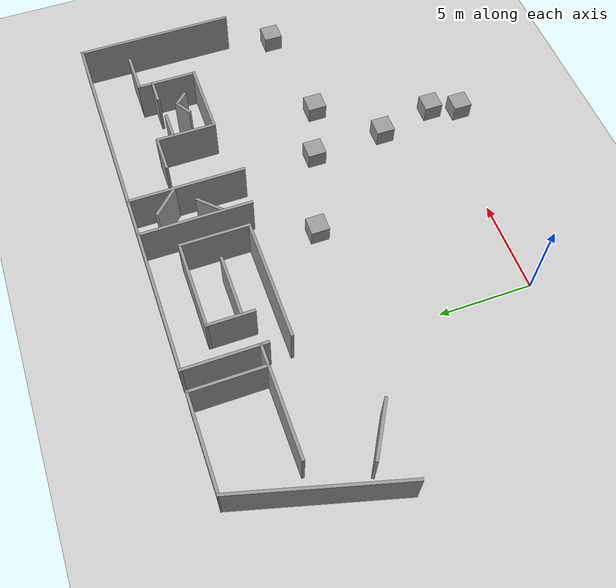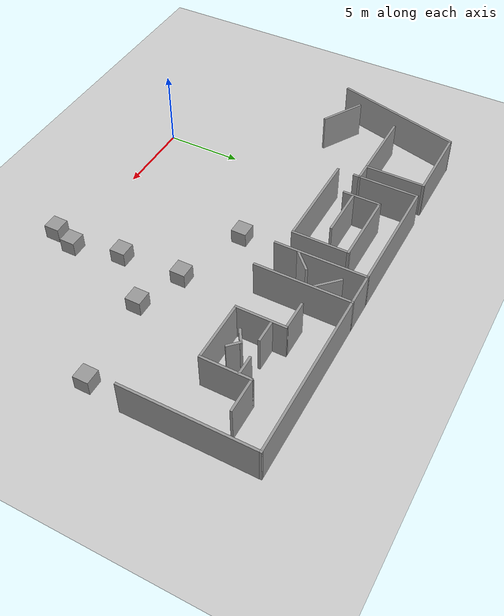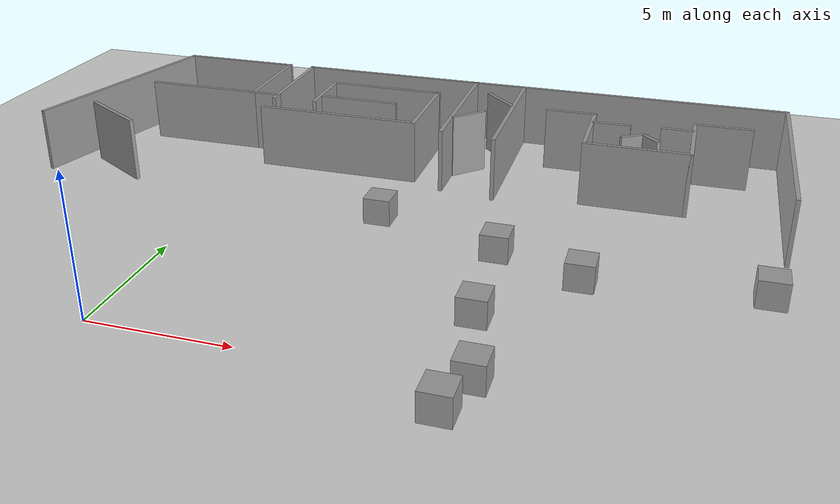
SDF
<sdf version="1.6">
 <world name="default">
  <model name="ground_plane">
   <static>1</static>
   <link name="link">
    <collision name="collision">
     <geometry><plane><normal>0 0 1</normal><size>100 100</size></plane></geometry>
     <surface>
      <contact><collide_bitmask>65535</collide_bitmask></contact>
      <friction><ode><mu>100</mu><mu2>50</mu2></ode></friction>
     </surface>
    </collision>
    <visual name="visual">
     <cast_shadows>0</cast_shadows>
     <geometry><plane><normal>0 0 1</normal><size>100 100</size></plane></geometry>
     <material>
      <script><uri>file://media/materials/scripts/gazebo.material</uri><name>Gazebo/Grey</name></script>
     </material>
    </visual>
   </link>
  </model>
  <model name="unit_box">
   <pose>14.1575 6.46999 0.499995 0 -1e-05 0</pose>
   <link name="link">
    <inertial>
     <mass>1</mass>
     <inertia>
      <ixx>0.166667</ixx>
      <ixy>0</ixy>
      <ixz>0</ixz>
      <iyy>0.166667</iyy>
      <iyz>0</iyz>
      <izz>0.166667</izz>
     </inertia>
    </inertial>
    <collision name="collision"><geometry><box><size>1 1 1</size></box></geometry></collision>
    <visual name="visual">
     <geometry><box><size>1 1 1</size></box></geometry>
     <material>
      <script><name>Gazebo/Grey</name><uri>file://media/materials/scripts/gazebo.material</uri></script>
     </material>
    </visual>
   </link>
  </model>
  <model name="unit_box_0">
   <pose>20.0263 7.10302 0.499995 -1e-05 -0 -0</pose>
   <link name="link">
    <inertial>
     <mass>1</mass>
     <inertia>
      <ixx>0.166667</ixx>
      <ixy>0</ixy>
      <ixz>0</ixz>
      <iyy>0.166667</iyy>
      <iyz>0</iyz>
      <izz>0.166667</izz>
     </inertia>
    </inertial>
    <collision name="collision"><geometry><box><size>1 1 1</size></box></geometry></collision>
    <visual name="visual">
     <geometry><box><size>1 1 1</size></box></geometry>
     <material>
      <script><name>Gazebo/Grey</name><uri>file://media/materials/scripts/gazebo.material</uri></script>
     </material>
    </visual>
   </link>
  </model>
  <model name="unit_box_5">
   <pose>12.0703 0.301774 0.499995 0 -1e-05 0</pose>
   <link name="link">
    <inertial>
     <mass>1</mass>
     <inertia>
      <ixx>0.166667</ixx>
      <ixy>0</ixy>
      <ixz>0</ixz>
      <iyy>0.166667</iyy>
      <iyz>0</iyz>
      <izz>0.166667</izz>
     </inertia>
    </inertial>
    <collision name="collision"><geometry><box><size>1 1 1</size></box></geometry></collision>
    <visual name="visual">
     <geometry><box><size>1 1 1</size></box></geometry>
     <material>
      <script><name>Gazebo/Grey</name><uri>file://media/materials/scripts/gazebo.material</uri></script>
     </material>
    </visual>
   </link>
  </model>
  <model name="unit_box_4">
   <pose>11.5612 -1.25822 0.499995 0 1e-05 0</pose>
   <link name="link">
    <inertial>
     <mass>1</mass>
     <inertia>
      <ixx>0.166667</ixx>
      <ixy>0</ixy>
      <ixz>0</ixz>
      <iyy>0.166667</iyy>
      <iyz>0</iyz>
      <izz>0.166667</izz>
     </inertia>
    </inertial>
    <collision name="collision"><geometry><box><size>1 1 1</size></box></geometry></collision>
    <visual name="visual">
     <geometry><box><size>1 1 1</size></box></geometry>
     <material>
      <script><name>Gazebo/Grey</name><uri>file://media/materials/scripts/gazebo.material</uri></script>
     </material>
    </visual>
   </link>
  </model>
  <model name="custom_large_house_2">
   <pose>6.36244 13.8515 0 0 -0 0</pose>
   <link name="Wall_10">
    <collision name="Wall_10_Collision">
     <geometry><box><size>2.5 0.15 2.5</size></box></geometry>
     <pose>0 0 1.25 0 -0 0</pose>
    </collision>
    <visual name="Wall_10_Visual">
     <pose>0 0 1.25 0 -0 0</pose>
     <geometry><box><size>2.5 0.15 2.5</size></box></geometry>
     <material>
      <script><uri>file://media/materials/scripts/gazebo.material</uri><name>Gazebo/Grey</name></script>
      <ambient>1 1 1 1</ambient>
     </material>
     <meta><layer>0</layer></meta>
    </visual>
    <pose>-4.30365 1.24157 0 0 -0 -1.5708</pose>
   </link>
   <link name="Wall_12">
    <collision name="Wall_12_Collision">
     <geometry><box><size>4 0.15 2.5</size></box></geometry>
     <pose>0 0 1.25 0 -0 0</pose>
    </collision>
    <visual name="Wall_12_Visual">
     <pose>0 0 1.25 0 -0 0</pose>
     <geometry><box><size>4 0.15 2.5</size></box></geometry>
     <material>
      <script><uri>file://media/materials/scripts/gazebo.material</uri><name>Gazebo/Grey</name></script>
      <ambient>1 1 1 1</ambient>
     </material>
     <meta><layer>0</layer></meta>
    </visual>
    <pose>-6.05365 2.24157 0 0 -0 -1.5708</pose>
   </link>
   <link name="Wall_13">
    <collision name="Wall_13_Collision">
     <geometry><box><size>1.25 0.15 2.5</size></box></geometry>
     <pose>0 0 1.25 0 -0 0</pose>
    </collision>
    <visual name="Wall_13_Visual">
     <pose>0 0 1.25 0 -0 0</pose>
     <geometry><box><size>1.25 0.15 2.5</size></box></geometry>
     <material>
      <script><uri>file://media/materials/scripts/gazebo.material</uri><name>Gazebo/Grey</name></script>
      <ambient>1 1 1 1</ambient>
     </material>
     <meta><layer>0</layer></meta>
    </visual>
    <pose>-6.60365 0.316572 0 0 -0 3.14159</pose>
   </link>
   <link name="Wall_14">
    <collision name="Wall_14_Collision">
     <geometry><box><size>4 0.15 2.5</size></box></geometry>
     <pose>0 0 1.25 0 -0 0</pose>
    </collision>
    <visual name="Wall_14_Visual">
     <pose>0 0 1.25 0 -0 0</pose>
     <geometry><box><size>4 0.15 2.5</size></box></geometry>
     <material>
      <script><uri>file://media/materials/scripts/gazebo.material</uri><name>Gazebo/Grey</name></script>
      <ambient>1 1 1 1</ambient>
     </material>
     <meta><layer>0</layer></meta>
    </visual>
    <pose>-7.15365 2.24157 0 0 -0 1.5708</pose>
   </link>
   <link name="Wall_15">
    <collision name="Wall_15_Collision">
     <geometry><box><size>5 0.15 2.5</size></box></geometry>
     <pose>0 0 1.25 0 -0 0</pose>
    </collision>
    <visual name="Wall_15_Visual">
     <pose>0 0 1.25 0 -0 0</pose>
     <geometry><box><size>5 0.15 2.5</size></box></geometry>
     <material>
      <script><uri>file://media/materials/scripts/gazebo.material</uri><name>Gazebo/Grey</name></script>
      <ambient>1 1 1 1</ambient>
     </material>
     <meta><layer>0</layer></meta>
    </visual>
    <pose>-9.57865 4.16657 0 0 -0 3.14159</pose>
   </link>
   <link name="Wall_16">
    <collision name="Wall_16_Collision">
     <geometry><box><size>8.75 0.15 2.5</size></box></geometry>
     <pose>0 0 1.25 0 -0 0</pose>
    </collision>
    <visual name="Wall_16_Visual">
     <pose>0 0 1.25 0 -0 0</pose>
     <geometry><box><size>8.75 0.15 2.5</size></box></geometry>
     <material>
      <script><uri>file://media/materials/scripts/gazebo.material</uri><name>Gazebo/Grey</name></script>
      <ambient>1 1 1 1</ambient>
     </material>
     <meta><layer>0</layer></meta>
    </visual>
    <pose>-13.1166 0.013091 0 0 -0 -1.8326</pose>
   </link>
   <link name="Wall_18">
    <collision name="Wall_18_Collision">
     <geometry><box><size>4.75 0.15 2.5</size></box></geometry>
     <pose>0 0 1.25 0 -0 0</pose>
    </collision>
    <visual name="Wall_18_Visual">
     <pose>0 0 1.25 0 -0 0</pose>
     <geometry><box><size>4.75 0.15 2.5</size></box></geometry>
     <material>
      <script><uri>file://media/materials/scripts/gazebo.material</uri><name>Gazebo/Grey</name></script>
      <ambient>1 1 1 1</ambient>
     </material>
     <meta><layer>0</layer></meta>
    </visual>
    <pose>-9.45365 0.316572 0 0 -0 3.14159</pose>
   </link>
   <link name="Wall_2">
    <collision name="Wall_2_Collision">
     <geometry><box><size>6 0.15 2.5</size></box></geometry>
     <pose>0 0 1.25 0 -0 0</pose>
    </collision>
    <visual name="Wall_2_Visual">
     <pose>0 0 1.25 0 -0 0</pose>
     <geometry><box><size>6 0.15 2.5</size></box></geometry>
     <material>
      <script><uri>file://media/materials/scripts/gazebo.material</uri><name>Gazebo/Grey</name></script>
      <ambient>1 1 1 1</ambient>
     </material>
     <meta><layer>0</layer></meta>
    </visual>
    <pose>1.54635 1.24157 0 0 -0 1.5708</pose>
   </link>
   <link name="Wall_20">
    <collision name="Wall_20_Collision">
     <geometry><box><size>2.25 0.15 2.5</size></box></geometry>
     <pose>0 0 1.25 0 -0 0</pose>
    </collision>
    <visual name="Wall_20_Visual">
     <pose>0 0 1.25 0 -0 0</pose>
     <geometry><box><size>2.25 0.15 2.5</size></box></geometry>
     <material>
      <script><uri>file://media/materials/scripts/gazebo.material</uri><name>Gazebo/Grey</name></script>
      <ambient>1 1 1 1</ambient>
     </material>
     <meta><layer>0</layer></meta>
    </visual>
    <pose>2.59635 4.16657 0 0 -0 0</pose>
   </link>
   <link name="Wall_21">
    <collision name="Wall_21_Collision">
     <geometry><box><size>6.25 0.15 2.5</size></box></geometry>
     <pose>0 0 1.25 0 -0 0</pose>
    </collision>
    <visual name="Wall_21_Visual">
     <pose>0 0 1.25 0 -0 0</pose>
     <geometry><box><size>6.25 0.15 2.5</size></box></geometry>
     <material>
      <script><uri>file://media/materials/scripts/gazebo.material</uri><name>Gazebo/Grey</name></script>
      <ambient>1 1 1 1</ambient>
     </material>
     <meta><layer>0</layer></meta>
    </visual>
    <pose>3.64635 1.11657 0 0 -0 -1.5708</pose>
   </link>
   <link name="Wall_23">
    <collision name="Wall_23_Collision">
     <geometry><box><size>2 0.15 2.5</size></box></geometry>
     <pose>0 0 1.25 0 -0 0</pose>
    </collision>
    <visual name="Wall_23_Visual">
     <pose>0 0 1.25 0 -0 0</pose>
     <geometry><box><size>2 0.15 2.5</size></box></geometry>
     <material>
      <script><uri>file://media/materials/scripts/gazebo.material</uri><name>Gazebo/Grey</name></script>
      <ambient>1 1 1 1</ambient>
     </material>
     <meta><layer>0</layer></meta>
    </visual>
    <pose>5.99756 1.76905 0 0 -0 0</pose>
   </link>
   <link name="Wall_24">
    <collision name="Wall_24_Collision">
     <geometry><box><size>3.25 0.15 2.5</size></box></geometry>
     <pose>0 0 1.25 0 -0 0</pose>
    </collision>
    <visual name="Wall_24_Visual">
     <pose>0 0 1.25 0 -0 0</pose>
     <geometry><box><size>3.25 0.15 2.5</size></box></geometry>
     <material>
      <script><uri>file://media/materials/scripts/gazebo.material</uri><name>Gazebo/Grey</name></script>
      <ambient>1 1 1 1</ambient>
     </material>
     <meta><layer>0</layer></meta>
    </visual>
    <pose>6.92256 0.21905 0 0 -0 -1.5708</pose>
   </link>
   <link name="Wall_26">
    <collision name="Wall_26_Collision">
     <geometry><box><size>10.75 0.15 2.5</size></box></geometry>
     <pose>0 0 1.25 0 -0 0</pose>
    </collision>
    <visual name="Wall_26_Visual">
     <pose>0 0 1.25 0 -0 0</pose>
     <geometry><box><size>10.75 0.15 2.5</size></box></geometry>
     <material>
      <script><uri>file://media/materials/scripts/gazebo.material</uri><name>Gazebo/Grey</name></script>
      <ambient>1 1 1 1</ambient>
     </material>
     <meta><layer>0</layer></meta>
    </visual>
    <pose>8.94635 4.16657 0 0 -0 0</pose>
   </link>
   <link name="Wall_27">
    <collision name="Wall_27_Collision">
     <geometry><box><size>8.5 0.15 2.5</size></box></geometry>
     <pose>0 0 1.25 0 -0 0</pose>
    </collision>
    <visual name="Wall_27_Visual">
     <pose>0 0 1.25 0 -0 0</pose>
     <geometry><box><size>8.5 0.15 2.5</size></box></geometry>
     <material>
      <script><uri>file://media/materials/scripts/gazebo.material</uri><name>Gazebo/Grey</name></script>
      <ambient>1 1 1 1</ambient>
     </material>
     <meta><layer>0</layer></meta>
    </visual>
    <pose>14.2463 -0.008428 0 0 -0 -1.5708</pose>
   </link>
   <link name="Wall_29">
    <collision name="Wall_29_Collision">
     <geometry><box><size>4 0.15 2.5</size></box></geometry>
     <pose>0 0 1.25 0 -0 0</pose>
    </collision>
    <visual name="Wall_29_Visual">
     <pose>0 0 1.25 0 -0 0</pose>
     <geometry><box><size>4 0.15 2.5</size></box></geometry>
     <material>
      <script><uri>file://media/materials/scripts/gazebo.material</uri><name>Gazebo/Grey</name></script>
      <ambient>1 1 1 1</ambient>
     </material>
     <meta><layer>0</layer></meta>
    </visual>
    <pose>8.84756 -1.33095 0 0 -0 0</pose>
   </link>
   <link name="Wall_30">
    <collision name="Wall_30_Collision">
     <geometry><box><size>3.25 0.15 2.5</size></box></geometry>
     <pose>0 0 1.25 0 -0 0</pose>
    </collision>
    <visual name="Wall_30_Visual">
     <pose>0 0 1.25 0 -0 0</pose>
     <geometry><box><size>3.25 0.15 2.5</size></box></geometry>
     <material>
      <script><uri>file://media/materials/scripts/gazebo.material</uri><name>Gazebo/Grey</name></script>
      <ambient>1 1 1 1</ambient>
     </material>
     <meta><layer>0</layer></meta>
    </visual>
    <pose>10.7726 0.21905 0 0 -0 1.5708</pose>
   </link>
   <link name="Wall_31">
    <collision name="Wall_31_Collision">
     <geometry><box><size>2.25 0.15 2.5</size></box></geometry>
     <pose>0 0 1.25 0 -0 0</pose>
    </collision>
    <visual name="Wall_31_Visual">
     <pose>0 0 1.25 0 -0 0</pose>
     <geometry><box><size>2.25 0.15 2.5</size></box></geometry>
     <material>
      <script><uri>file://media/materials/scripts/gazebo.material</uri><name>Gazebo/Grey</name></script>
      <ambient>1 1 1 1</ambient>
     </material>
     <meta><layer>0</layer></meta>
    </visual>
    <pose>11.8226 1.76905 0 0 -0 0</pose>
   </link>
   <link name="Wall_33">
    <collision name="Wall_33_Collision">
     <geometry><box><size>1.5 0.15 2.5</size></box></geometry>
     <pose>0 0 1.25 0 -0 0</pose>
    </collision>
    <visual name="Wall_33_Visual">
     <pose>0 0 1.25 0 -0 0</pose>
     <geometry><box><size>1.5 0.15 2.5</size></box></geometry>
     <material>
      <script><uri>file://media/materials/scripts/gazebo.material</uri><name>Gazebo/Grey</name></script>
      <ambient>1 1 1 1</ambient>
     </material>
     <meta><layer>0</layer></meta>
    </visual>
    <pose>7.65841 0.907868 0 0 -0 0</pose>
   </link>
   <link name="Wall_35">
    <collision name="Wall_35_Collision">
     <geometry><box><size>1.25 0.15 2.5</size></box></geometry>
     <pose>0 0 1.25 0 -0 0</pose>
    </collision>
    <visual name="Wall_35_Visual">
     <pose>0 0 1.25 0 -0 0</pose>
     <geometry><box><size>1.25 0.15 2.5</size></box></geometry>
     <material>
      <script><uri>file://media/materials/scripts/gazebo.material</uri><name>Gazebo/Grey</name></script>
      <ambient>1 1 1 1</ambient>
     </material>
     <meta><layer>0</layer></meta>
    </visual>
    <pose>10.1638 1.016 0 0 -0 3.14159</pose>
   </link>
   <link name="Wall_37">
    <collision name="Wall_37_Collision">
     <geometry><box><size>1.03841 0.15 2.5</size></box></geometry>
     <pose>0 0 1.25 0 -0 0</pose>
    </collision>
    <visual name="Wall_37_Visual">
     <pose>0 0 1.25 0 -0 0</pose>
     <geometry><box><size>1.03841 0.15 2.5</size></box></geometry>
     <material>
      <script><uri>file://media/materials/scripts/gazebo.material</uri><name>Gazebo/Grey</name></script>
      <ambient>1 1 1 1</ambient>
     </material>
     <meta><layer>0</layer></meta>
    </visual>
    <pose>8.60121 -0.096438 0 0 -0 0.568548</pose>
   </link>
   <link name="Wall_39">
    <collision name="Wall_39_Collision">
     <geometry><box><size>0.902916 0.15 2.5</size></box></geometry>
     <pose>0 0 1.25 0 -0 0</pose>
    </collision>
    <visual name="Wall_39_Visual">
     <pose>0 0 1.25 0 -0 0</pose>
     <geometry><box><size>0.902916 0.15 2.5</size></box></geometry>
     <material>
      <script><uri>file://media/materials/scripts/gazebo.material</uri><name>Gazebo/Grey</name></script>
      <ambient>1 1 1 1</ambient>
     </material>
     <meta><layer>0</layer></meta>
    </visual>
    <pose>9.24173 -0.177535 0 0 -0 -0.785398</pose>
   </link>
   <link name="Wall_41">
    <collision name="Wall_41_Collision">
     <geometry><box><size>0.5 0.15 2.5</size></box></geometry>
     <pose>0 0 1.25 0 -0 0</pose>
    </collision>
    <visual name="Wall_41_Visual">
     <pose>0 0 1.25 0 -0 0</pose>
     <geometry><box><size>0.5 0.15 2.5</size></box></geometry>
     <material>
      <script><uri>file://media/materials/scripts/gazebo.material</uri><name>Gazebo/Grey</name></script>
      <ambient>1 1 1 1</ambient>
     </material>
     <meta><layer>0</layer></meta>
    </visual>
    <pose>-6.05365 0.141572 0 0 -0 -1.5708</pose>
   </link>
   <link name="Wall_43">
    <collision name="Wall_43_Collision">
     <geometry><box><size>3.25 0.15 2.5</size></box></geometry>
     <pose>0 0 1.25 0 -0 0</pose>
    </collision>
    <visual name="Wall_43_Visual">
     <pose>0 0 1.25 0 -0 0</pose>
     <geometry><box><size>3.25 0.15 2.5</size></box></geometry>
     <material>
      <script><uri>file://media/materials/scripts/gazebo.material</uri><name>Gazebo/Grey</name></script>
      <ambient>1 1 1 1</ambient>
     </material>
     <meta><layer>0</layer></meta>
    </visual>
    <pose>-2.63396 0.683887 0 0 -0 0</pose>
   </link>
   <link name="Wall_45">
    <collision name="Wall_45_Collision">
     <geometry><box><size>1.5 0.15 2.5</size></box></geometry>
     <pose>0 0 1.25 0 -0 0</pose>
    </collision>
    <visual name="Wall_45_Visual">
     <pose>0 0 1.25 0 -0 0</pose>
     <geometry><box><size>1.5 0.15 2.5</size></box></geometry>
     <material>
      <script><uri>file://media/materials/scripts/gazebo.material</uri><name>Gazebo/Grey</name></script>
      <ambient>1 1 1 1</ambient>
     </material>
     <meta><layer>0</layer></meta>
    </visual>
    <pose>2.13225 0.350225 0 0 -0 0.785398</pose>
   </link>
   <link name="Wall_47">
    <collision name="Wall_47_Collision">
     <geometry><box><size>1.75 0.15 2.5</size></box></geometry>
     <pose>0 0 1.25 0 -0 0</pose>
    </collision>
    <visual name="Wall_47_Visual">
     <pose>0 0 1.25 0 -0 0</pose>
     <geometry><box><size>1.75 0.15 2.5</size></box></geometry>
     <material>
      <script><uri>file://media/materials/scripts/gazebo.material</uri><name>Gazebo/Grey</name></script>
      <ambient>1 1 1 1</ambient>
     </material>
     <meta><layer>0</layer></meta>
    </visual>
    <pose>2.9815 2.38492 0 0 -0 2.35619</pose>
   </link>
   <link name="Wall_49">
    <collision name="Wall_49_Collision">
     <geometry><box><size>3 0.15 2.5</size></box></geometry>
     <pose>0 0 1.25 0 -0 0</pose>
    </collision>
    <visual name="Wall_49_Visual">
     <pose>0 0 1.25 0 -0 0</pose>
     <geometry><box><size>3 0.15 2.5</size></box></geometry>
     <material>
      <script><uri>file://media/materials/scripts/gazebo.material</uri><name>Gazebo/Grey</name></script>
      <ambient>1 1 1 1</ambient>
     </material>
     <meta><layer>0</layer></meta>
    </visual>
    <pose>-11.6001 -3.38058 0 0 -0 -0.523599</pose>
   </link>
   <link name="Wall_5">
    <collision name="Wall_5_Collision">
     <geometry><box><size>7.75 0.15 2.5</size></box></geometry>
     <pose>0 0 1.25 0 -0 0</pose>
    </collision>
    <visual name="Wall_5_Visual">
     <pose>0 0 1.25 0 -0 0</pose>
     <geometry><box><size>7.75 0.15 2.5</size></box></geometry>
     <material>
      <script><uri>file://media/materials/scripts/gazebo.material</uri><name>Gazebo/Grey</name></script>
      <ambient>1 1 1 1</ambient>
     </material>
     <meta><layer>0</layer></meta>
    </visual>
    <pose>-2.25365 4.16657 0 0 -0 3.14159</pose>
   </link>
   <link name="Wall_7">
    <collision name="Wall_7_Collision">
     <geometry><box><size>6.5 0.15 2.5</size></box></geometry>
     <pose>0 0 1.25 0 -0 0</pose>
    </collision>
    <visual name="Wall_7_Visual">
     <pose>0 0 1.25 0 -0 0</pose>
     <geometry><box><size>6.5 0.15 2.5</size></box></geometry>
     <material>
      <script><uri>file://media/materials/scripts/gazebo.material</uri><name>Gazebo/Grey</name></script>
      <ambient>1 1 1 1</ambient>
     </material>
     <meta><layer>0</layer></meta>
    </visual>
    <pose>-2.87865 -1.18343 0 0 -0 0</pose>
   </link>
   <link name="Wall_8">
    <collision name="Wall_8_Collision">
     <geometry><box><size>3.75 0.15 2.5</size></box></geometry>
     <pose>0 0 1.25 0 -0 0</pose>
    </collision>
    <visual name="Wall_8_Visual">
     <pose>0 0 1.25 0 -0 0</pose>
     <geometry><box><size>3.75 0.15 2.5</size></box></geometry>
     <material>
      <script><uri>file://media/materials/scripts/gazebo.material</uri><name>Gazebo/Grey</name></script>
      <ambient>1 1 1 1</ambient>
     </material>
     <meta><layer>0</layer></meta>
    </visual>
    <pose>0.29635 0.616572 0 0 -0 1.5708</pose>
   </link>
   <link name="Wall_9">
    <collision name="Wall_9_Collision">
     <geometry><box><size>4.75 0.15 2.5</size></box></geometry>
     <pose>0 0 1.25 0 -0 0</pose>
    </collision>
    <visual name="Wall_9_Visual">
     <pose>0 0 1.25 0 -0 0</pose>
     <geometry><box><size>4.75 0.15 2.5</size></box></geometry>
     <material>
      <script><uri>file://media/materials/scripts/gazebo.material</uri><name>Gazebo/Grey</name></script>
      <ambient>1 1 1 1</ambient>
     </material>
     <meta><layer>0</layer></meta>
    </visual>
    <pose>-2.00365 2.41657 0 0 -0 3.14159</pose>
   </link>
   <static>1</static>
  </model>
  <model name="unit_box_12">
   <pose>11.1389 7.58221 0.499995 0 1e-05 0</pose>
   <link name="link">
    <inertial>
     <mass>1</mass>
     <inertia>
      <ixx>0.166667</ixx>
      <ixy>0</ixy>
      <ixz>0</ixz>
      <iyy>0.166667</iyy>
      <iyz>0</iyz>
      <izz>0.166667</izz>
     </inertia>
    </inertial>
    <collision name="collision"><geometry><box><size>1 1 1</size></box></geometry></collision>
    <visual name="visual">
     <geometry><box><size>1 1 1</size></box></geometry>
     <material>
      <script><name>Gazebo/Grey</name><uri>file://media/materials/scripts/gazebo.material</uri></script>
     </material>
    </visual>
   </link>
  </model>
  <model name="unit_box_13">
   <pose>11.3687 3.48135 0.499995 -1e-05 -0 -0</pose>
   <link name="link">
    <inertial>
     <mass>1</mass>
     <inertia>
      <ixx>0.166667</ixx>
      <ixy>0</ixy>
      <ixz>0</ixz>
      <iyy>0.166667</iyy>
      <iyz>0</iyz>
      <izz>0.166667</izz>
     </inertia>
    </inertial>
    <collision name="collision"><geometry><box><size>1 1 1</size></box></geometry></collision>
    <visual name="visual">
     <geometry><box><size>1 1 1</size></box></geometry>
     <material>
      <script><name>Gazebo/Grey</name><uri>file://media/materials/scripts/gazebo.material</uri></script>
     </material>
    </visual>
   </link>
  </model>
  <model name="unit_box_16">
   <pose>6.47593 9.11908 0.5 0 -0 0</pose>
   <link name="link">
    <inertial>
     <mass>1</mass>
     <inertia>
      <ixx>0.166667</ixx>
      <ixy>0</ixy>
      <ixz>0</ixz>
      <iyy>0.166667</iyy>
      <iyz>0</iyz>
      <izz>0.166667</izz>
     </inertia>
    </inertial>
    <collision name="collision"><geometry><box><size>1 1 1</size></box></geometry></collision>
    <visual name="visual">
     <geometry><box><size>1 1 1</size></box></geometry>
     <material>
      <script><name>Gazebo/Grey</name><uri>file://media/materials/scripts/gazebo.material</uri></script>
     </material>
    </visual>
   </link>
  </model>
 </world>
</sdf>
